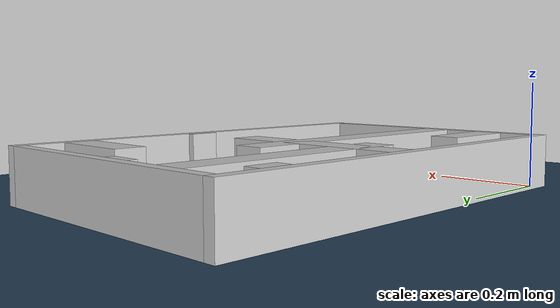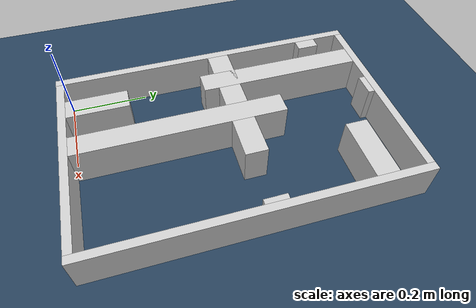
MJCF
<?xml version="1.0" ?>
<mujoco model="generated_real_template">
  <compiler angle="degree"/>
  <option timestep="0.002" integrator="implicitfast" iterations="100" cone="elliptic"/>
  <default>
    <geom density="1"/>
  </default>
  <asset>
    <texture builtin="gradient" height="3072" rgb1="0.3 0.5 0.7" rgb2="0 0 0" type="skybox" width="512"/>
    <texture builtin="checker" height="300" mark="edge" markrgb="0.8 0.8 0.8" name="groundplane" rgb1="0.2 0.3 0.4" rgb2="0.1 0.2 0.3" type="2d" width="300"/>
    <material name="groundplane" reflectance="0.2" texrepeat="5 5" texture="groundplane" texuniform="true"/>
  </asset>
  <worldbody>
    <light dir="0 0 -1" directional="true" pos="0 0 1.5"/>
    <geom name="floor" type="plane" condim="4" friction="0.5 0.005 0.001" material="groundplane" size="0 0 0.05"/>
    <body name="walls">
      <geom name="wall_boundary_left" type="box" condim="4" friction="1.0 0.005 0.0001" rgba="0.8 0.8 0.8 1" pos="-0.010000 0.387500 0.050000" euler="0 0 0.000000" size="0.010000 0.407500 0.050000"/>
      <geom name="wall_boundary_right" type="box" condim="4" friction="1.0 0.005 0.0001" rgba="0.8 0.8 0.8 1" pos="0.500000 0.387500 0.050000" euler="0 0 0.000000" size="0.010000 0.407500 0.050000"/>
      <geom name="wall_boundary_bottom" type="box" condim="4" friction="1.0 0.005 0.0001" rgba="0.8 0.8 0.8 1" pos="0.245000 -0.010000 0.050000" euler="0 0 0.000000" size="0.245000 0.010000 0.050000"/>
      <geom name="wall_boundary_top" type="box" condim="4" friction="1.0 0.005 0.0001" rgba="0.8 0.8 0.8 1" pos="0.245000 0.785000 0.050000" euler="0 0 0.000000" size="0.245000 0.010000 0.050000"/>
      <geom name="wall_inner_1_1" type="box" condim="4" friction="1.0 0.005 0.0001" rgba="0.8 0.8 0.8 1" pos="0.217560 0.267264 0.050000" euler="0 0 90.000000" size="0.267264 0.028500 0.050000"/>
      <geom name="wall_inner_1_2" type="box" condim="4" friction="1.0 0.005 0.0001" rgba="0.8 0.8 0.8 1" pos="0.217560 0.766657 0.050000" euler="0 0 90.000000" size="0.008343 0.028500 0.050000"/>
      <geom name="wall_inner_2_1" type="box" condim="4" friction="1.0 0.005 0.0001" rgba="0.8 0.8 0.8 1" pos="0.094765 0.078828 0.050000" euler="0 0 90.000000" size="0.078828 0.028500 0.050000"/>
      <geom name="wall_inner_2_2" type="box" condim="4" friction="1.0 0.005 0.0001" rgba="0.8 0.8 0.8 1" pos="0.094765 0.563319 0.050000" euler="0 0 90.000000" size="0.211681 0.028500 0.050000"/>
      <geom name="wall_inner_3_1" type="box" condim="4" friction="1.0 0.005 0.0001" rgba="0.8 0.8 0.8 1" pos="0.015435 0.679042 0.050000" euler="0 0 0.000000" size="0.015435 0.028500 0.050000"/>
      <geom name="wall_inner_3_2" type="box" condim="4" friction="1.0 0.005 0.0001" rgba="0.8 0.8 0.8 1" pos="0.410690 0.679042 0.050000" euler="0 0 0.000000" size="0.079310 0.028500 0.050000"/>
      <geom name="wall_inner_4_1" type="box" condim="4" friction="1.0 0.005 0.0001" rgba="0.8 0.8 0.8 1" pos="0.176982 0.418476 0.050000" euler="0 0 0.000000" size="0.176982 0.028500 0.050000"/>
      <geom name="wall_inner_4_2" type="box" condim="4" friction="1.0 0.005 0.0001" rgba="0.8 0.8 0.8 1" pos="0.483420 0.418476 0.050000" euler="0 0 0.000000" size="0.006580 0.028500 0.050000"/>
    </body>
  </worldbody>
</mujoco>
